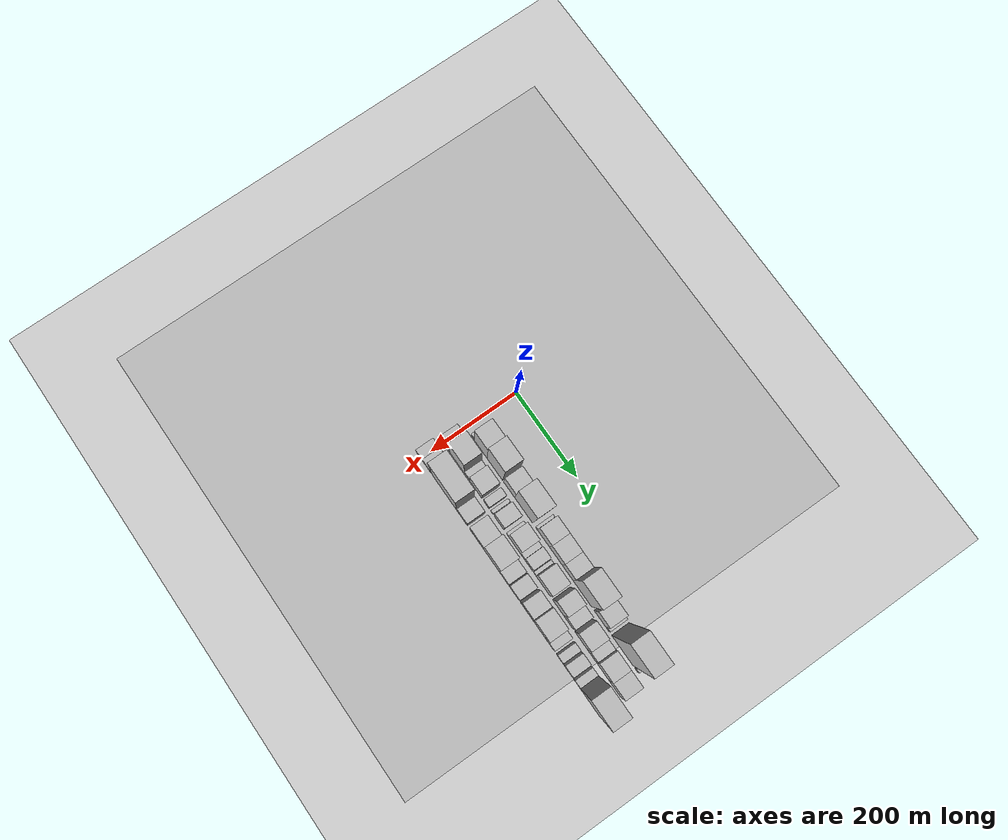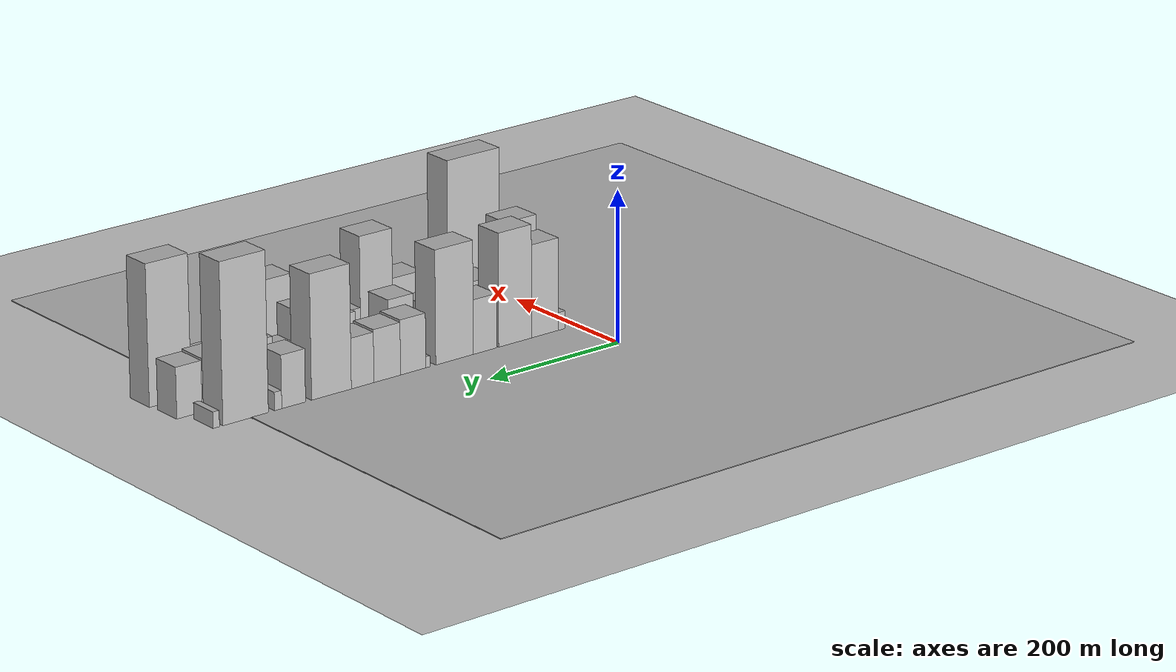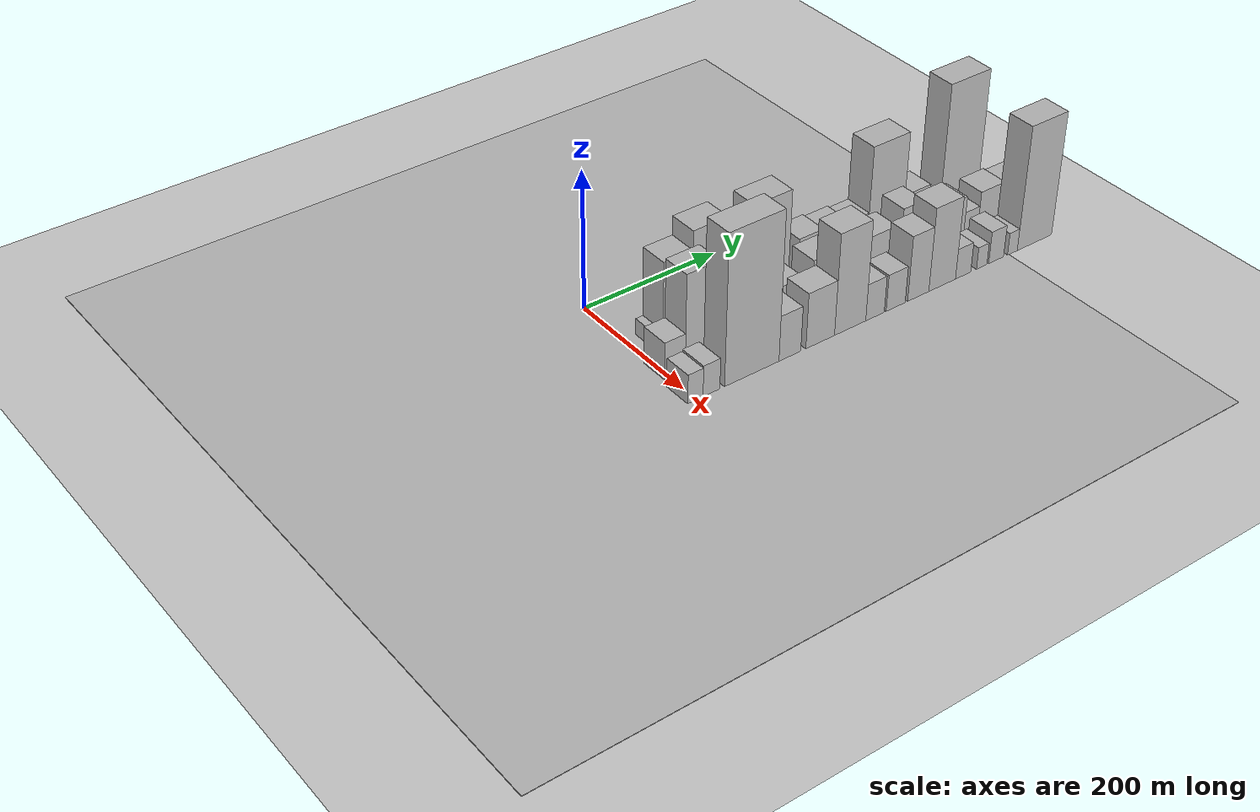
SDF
<sdf version="1.6">
 <world name="default">
  <include><name>ground_plane_1</name><uri>model://HANNAS_ground_plane</uri></include>
  <include>
   <name>ground_plane_2</name>
   <uri>model://HANNAS_ground_plane</uri>
   <pose>100 0 0  0 0 0</pose>
  </include>
  <model name="building_18">
   <static>1</static>
   <pose>100.0000 24.2222 0 0.000000 0.000000 0.000000</pose>
   <link name="link">
    <pose>0 0 12.00 0 0 0</pose>
    <collision name="collision"><geometry><box><size>40.0000 10.8533 24.0000</size></box></geometry></collision>
    <visual name="visual">
     <cast_shadows>0</cast_shadows>
     <geometry><box><size>40.0000 10.8533 24.0000</size></box></geometry>
     <material>
      <script>
       <uri>model://HANNAS_wall/materials/scripts</uri>
       <uri>model://HANNAS_wall/materials/textures</uri>
       <name>vrc/HANNAS_wall</name>
      </script>
     </material>
    </visual>
   </link>
  </model>
  <model name="building_19">
   <static>1</static>
   <pose>100.0000 51.1228 0 0.000000 0.000000 0.000000</pose>
   <link name="link">
    <pose>0 0 61.50 0 0 0</pose>
    <collision name="collision"><geometry><box><size>40.0000 42.9478 123.0000</size></box></geometry></collision>
    <visual name="visual">
     <cast_shadows>0</cast_shadows>
     <geometry><box><size>40.0000 42.9478 123.0000</size></box></geometry>
     <material>
      <script>
       <uri>model://HANNAS_wall/materials/scripts</uri>
       <uri>model://HANNAS_wall/materials/textures</uri>
       <name>vrc/HANNAS_wall</name>
      </script>
     </material>
    </visual>
   </link>
  </model>
  <model name="building_20">
   <static>1</static>
   <pose>100.0000 98.5554 0 0.000000 0.000000 0.000000</pose>
   <link name="link">
    <pose>0 0 75.00 0 0 0</pose>
    <collision name="collision"><geometry><box><size>40.0000 51.9175 150.0000</size></box></geometry></collision>
    <visual name="visual">
     <cast_shadows>0</cast_shadows>
     <geometry><box><size>40.0000 51.9175 150.0000</size></box></geometry>
     <material>
      <script>
       <uri>model://HANNAS_wall/materials/scripts</uri>
       <uri>model://HANNAS_wall/materials/textures</uri>
       <name>vrc/HANNAS_wall</name>
      </script>
     </material>
    </visual>
   </link>
  </model>
  <model name="building_21">
   <static>1</static>
   <pose>100.0000 145.8838 0 0.000000 0.000000 0.000000</pose>
   <link name="link">
    <pose>0 0 36.00 0 0 0</pose>
    <collision name="collision"><geometry><box><size>40.0000 36.7392 72.0000</size></box></geometry></collision>
    <visual name="visual">
     <cast_shadows>0</cast_shadows>
     <geometry><box><size>40.0000 36.7392 72.0000</size></box></geometry>
     <material>
      <script>
       <uri>model://HANNAS_wall/materials/scripts</uri>
       <uri>model://HANNAS_wall/materials/textures</uri>
       <name>vrc/HANNAS_wall</name>
      </script>
     </material>
    </visual>
   </link>
  </model>
  <model name="building_22">
   <static>1</static>
   <pose>100.0000 193.4489 0 0.000000 0.000000 0.000000</pose>
   <link name="link">
    <pose>0 0 75.00 0 0 0</pose>
    <collision name="collision"><geometry><box><size>40.0000 58.3910 150.0000</size></box></geometry></collision>
    <visual name="visual">
     <cast_shadows>0</cast_shadows>
     <geometry><box><size>40.0000 58.3910 150.0000</size></box></geometry>
     <material>
      <script>
       <uri>model://HANNAS_wall/materials/scripts</uri>
       <uri>model://HANNAS_wall/materials/textures</uri>
       <name>vrc/HANNAS_wall</name>
      </script>
     </material>
    </visual>
   </link>
  </model>
  <model name="building_23">
   <static>1</static>
   <pose>100.0000 234.8274 0 0.000000 0.000000 0.000000</pose>
   <link name="link">
    <pose>0 0 7.50 0 0 0</pose>
    <collision name="collision"><geometry><box><size>40.0000 6.3659 15.0000</size></box></geometry></collision>
    <visual name="visual">
     <cast_shadows>0</cast_shadows>
     <geometry><box><size>40.0000 6.3659 15.0000</size></box></geometry>
     <material>
      <script>
       <uri>model://HANNAS_wall/materials/scripts</uri>
       <uri>model://HANNAS_wall/materials/textures</uri>
       <name>vrc/HANNAS_wall</name>
      </script>
     </material>
    </visual>
   </link>
  </model>
  <model name="building_24">
   <static>1</static>
   <pose>100.0000 257.4116 0 0.000000 0.000000 0.000000</pose>
   <link name="link">
    <pose>0 0 36.00 0 0 0</pose>
    <collision name="collision"><geometry><box><size>40.0000 38.8025 72.0000</size></box></geometry></collision>
    <visual name="visual">
     <cast_shadows>0</cast_shadows>
     <geometry><box><size>40.0000 38.8025 72.0000</size></box></geometry>
     <material>
      <script>
       <uri>model://HANNAS_wall/materials/scripts</uri>
       <uri>model://HANNAS_wall/materials/textures</uri>
       <name>vrc/HANNAS_wall</name>
      </script>
     </material>
    </visual>
   </link>
  </model>
  <model name="building_25">
   <static>1</static>
   <pose>100.0000 297.0847 0 0.000000 0.000000 0.000000</pose>
   <link name="link">
    <pose>0 0 34.50 0 0 0</pose>
    <collision name="collision"><geometry><box><size>40.0000 40.5437 69.0000</size></box></geometry></collision>
    <visual name="visual">
     <cast_shadows>0</cast_shadows>
     <geometry><box><size>40.0000 40.5437 69.0000</size></box></geometry>
     <material>
      <script>
       <uri>model://HANNAS_wall/materials/scripts</uri>
       <uri>model://HANNAS_wall/materials/textures</uri>
       <name>vrc/HANNAS_wall</name>
      </script>
     </material>
    </visual>
   </link>
  </model>
  <model name="building_26">
   <static>1</static>
   <pose>100.0000 334.4643 0 0.000000 0.000000 0.000000</pose>
   <link name="link">
    <pose>0 0 33.00 0 0 0</pose>
    <collision name="collision"><geometry><box><size>40.0000 34.2156 66.0000</size></box></geometry></collision>
    <visual name="visual">
     <cast_shadows>0</cast_shadows>
     <geometry><box><size>40.0000 34.2156 66.0000</size></box></geometry>
     <material>
      <script>
       <uri>model://HANNAS_wall/materials/scripts</uri>
       <uri>model://HANNAS_wall/materials/textures</uri>
       <name>vrc/HANNAS_wall</name>
      </script>
     </material>
    </visual>
   </link>
  </model>
  <model name="building_27">
   <static>1</static>
   <pose>100.0000 381.3881 0 0.000000 0.000000 0.000000</pose>
   <link name="link">
    <pose>0 0 81.00 0 0 0</pose>
    <collision name="collision"><geometry><box><size>40.0000 59.6318 162.0000</size></box></geometry></collision>
    <visual name="visual">
     <cast_shadows>0</cast_shadows>
     <geometry><box><size>40.0000 59.6318 162.0000</size></box></geometry>
     <material>
      <script>
       <uri>model://HANNAS_wall/materials/scripts</uri>
       <uri>model://HANNAS_wall/materials/textures</uri>
       <name>vrc/HANNAS_wall</name>
      </script>
     </material>
    </visual>
   </link>
  </model>
  <model name="building_28">
   <static>1</static>
   <pose>100.0000 437.8209 0 0.000000 0.000000 0.000000</pose>
   <link name="link">
    <pose>0 0 34.50 0 0 0</pose>
    <collision name="collision"><geometry><box><size>40.0000 35.2339 69.0000</size></box></geometry></collision>
    <visual name="visual">
     <cast_shadows>0</cast_shadows>
     <geometry><box><size>40.0000 35.2339 69.0000</size></box></geometry>
     <material>
      <script>
       <uri>model://HANNAS_wall/materials/scripts</uri>
       <uri>model://HANNAS_wall/materials/textures</uri>
       <name>vrc/HANNAS_wall</name>
      </script>
     </material>
    </visual>
   </link>
  </model>
  <model name="building_29">
   <static>1</static>
   <pose>100.0000 460.8552 0 0.000000 0.000000 0.000000</pose>
   <link name="link">
    <pose>0 0 12.00 0 0 0</pose>
    <collision name="collision"><geometry><box><size>40.0000 10.8346 24.0000</size></box></geometry></collision>
    <visual name="visual">
     <cast_shadows>0</cast_shadows>
     <geometry><box><size>40.0000 10.8346 24.0000</size></box></geometry>
     <material>
      <script>
       <uri>model://HANNAS_wall/materials/scripts</uri>
       <uri>model://HANNAS_wall/materials/textures</uri>
       <name>vrc/HANNAS_wall</name>
      </script>
     </material>
    </visual>
   </link>
  </model>
  <model name="building_30">
   <static>1</static>
   <pose>100.0000 508.5867 0 0.000000 0.000000 0.000000</pose>
   <link name="link">
    <pose>0 0 103.50 0 0 0</pose>
    <collision name="collision"><geometry><box><size>40.0000 66.6283 207.0000</size></box></geometry></collision>
    <visual name="visual">
     <cast_shadows>0</cast_shadows>
     <geometry><box><size>40.0000 66.6283 207.0000</size></box></geometry>
     <material>
      <script>
       <uri>model://HANNAS_wall/materials/scripts</uri>
       <uri>model://HANNAS_wall/materials/textures</uri>
       <name>vrc/HANNAS_wall</name>
      </script>
     </material>
    </visual>
   </link>
  </model>
  <model name="building_31">
   <static>1</static>
   <pose>100.0000 551.4494 0 0.000000 0.000000 0.000000</pose>
   <link name="link">
    <pose>0 0 10.50 0 0 0</pose>
    <collision name="collision"><geometry><box><size>40.0000 9.0972 21.0000</size></box></geometry></collision>
    <visual name="visual">
     <cast_shadows>0</cast_shadows>
     <geometry><box><size>40.0000 9.0972 21.0000</size></box></geometry>
     <material>
      <script>
       <uri>model://HANNAS_wall/materials/scripts</uri>
       <uri>model://HANNAS_wall/materials/textures</uri>
       <name>vrc/HANNAS_wall</name>
      </script>
     </material>
    </visual>
   </link>
  </model>
  <model name="building_51">
   <static>1</static>
   <pose>152.0000 7.7453 0 0.000000 0.000000 0.000000</pose>
   <link name="link">
    <pose>0 0 27.00 0 0 0</pose>
    <collision name="collision"><geometry><box><size>40.0000 30.4874 54.0000</size></box></geometry></collision>
    <visual name="visual">
     <cast_shadows>0</cast_shadows>
     <geometry><box><size>40.0000 30.4874 54.0000</size></box></geometry>
     <material>
      <script>
       <uri>model://HANNAS_wall/materials/scripts</uri>
       <uri>model://HANNAS_wall/materials/textures</uri>
       <name>vrc/HANNAS_wall</name>
      </script>
     </material>
    </visual>
   </link>
  </model>
  <model name="building_52">
   <static>1</static>
   <pose>152.0000 47.5356 0 0.000000 0.000000 0.000000</pose>
   <link name="link">
    <pose>0 0 69.00 0 0 0</pose>
    <collision name="collision"><geometry><box><size>40.0000 49.0932 138.0000</size></box></geometry></collision>
    <visual name="visual">
     <cast_shadows>0</cast_shadows>
     <geometry><box><size>40.0000 49.0932 138.0000</size></box></geometry>
     <material>
      <script>
       <uri>model://HANNAS_wall/materials/scripts</uri>
       <uri>model://HANNAS_wall/materials/textures</uri>
       <name>vrc/HANNAS_wall</name>
      </script>
     </material>
    </visual>
   </link>
  </model>
  <model name="building_53">
   <static>1</static>
   <pose>152.0000 80.6233 0 0.000000 0.000000 0.000000</pose>
   <link name="link">
    <pose>0 0 15.00 0 0 0</pose>
    <collision name="collision"><geometry><box><size>40.0000 17.0822 30.0000</size></box></geometry></collision>
    <visual name="visual">
     <cast_shadows>0</cast_shadows>
     <geometry><box><size>40.0000 17.0822 30.0000</size></box></geometry>
     <material>
      <script>
       <uri>model://HANNAS_wall/materials/scripts</uri>
       <uri>model://HANNAS_wall/materials/textures</uri>
       <name>vrc/HANNAS_wall</name>
      </script>
     </material>
    </visual>
   </link>
  </model>
  <model name="building_54">
   <static>1</static>
   <pose>152.0000 109.5064 0 0.000000 0.000000 0.000000</pose>
   <link name="link">
    <pose>0 0 36.00 0 0 0</pose>
    <collision name="collision"><geometry><box><size>40.0000 40.6840 72.0000</size></box></geometry></collision>
    <visual name="visual">
     <cast_shadows>0</cast_shadows>
     <geometry><box><size>40.0000 40.6840 72.0000</size></box></geometry>
     <material>
      <script>
       <uri>model://HANNAS_wall/materials/scripts</uri>
       <uri>model://HANNAS_wall/materials/textures</uri>
       <name>vrc/HANNAS_wall</name>
      </script>
     </material>
    </visual>
   </link>
  </model>
  <model name="building_55">
   <static>1</static>
   <pose>152.0000 144.2552 0 0.000000 0.000000 0.000000</pose>
   <link name="link">
    <pose>0 0 16.50 0 0 0</pose>
    <collision name="collision"><geometry><box><size>40.0000 18.8135 33.0000</size></box></geometry></collision>
    <visual name="visual">
     <cast_shadows>0</cast_shadows>
     <geometry><box><size>40.0000 18.8135 33.0000</size></box></geometry>
     <material>
      <script>
       <uri>model://HANNAS_wall/materials/scripts</uri>
       <uri>model://HANNAS_wall/materials/textures</uri>
       <name>vrc/HANNAS_wall</name>
      </script>
     </material>
    </visual>
   </link>
  </model>
  <model name="building_56">
   <static>1</static>
   <pose>152.0000 162.7093 0 0.000000 0.000000 0.000000</pose>
   <link name="link">
    <pose>0 0 9.00 0 0 0</pose>
    <collision name="collision"><geometry><box><size>40.0000 8.0948 18.0000</size></box></geometry></collision>
    <visual name="visual">
     <cast_shadows>0</cast_shadows>
     <geometry><box><size>40.0000 8.0948 18.0000</size></box></geometry>
     <material>
      <script>
       <uri>model://HANNAS_wall/materials/scripts</uri>
       <uri>model://HANNAS_wall/materials/textures</uri>
       <name>vrc/HANNAS_wall</name>
      </script>
     </material>
    </visual>
   </link>
  </model>
  <model name="building_57">
   <static>1</static>
   <pose>152.0000 185.8116 0 0.000000 0.000000 0.000000</pose>
   <link name="link">
    <pose>0 0 30.00 0 0 0</pose>
    <collision name="collision"><geometry><box><size>40.0000 32.1097 60.0000</size></box></geometry></collision>
    <visual name="visual">
     <cast_shadows>0</cast_shadows>
     <geometry><box><size>40.0000 32.1097 60.0000</size></box></geometry>
     <material>
      <script>
       <uri>model://HANNAS_wall/materials/scripts</uri>
       <uri>model://HANNAS_wall/materials/textures</uri>
       <name>vrc/HANNAS_wall</name>
      </script>
     </material>
    </visual>
   </link>
  </model>
  <model name="building_58">
   <static>1</static>
   <pose>152.0000 213.2073 0 0.000000 0.000000 0.000000</pose>
   <link name="link">
    <pose>0 0 7.50 0 0 0</pose>
    <collision name="collision"><geometry><box><size>40.0000 6.6817 15.0000</size></box></geometry></collision>
    <visual name="visual">
     <cast_shadows>0</cast_shadows>
     <geometry><box><size>40.0000 6.6817 15.0000</size></box></geometry>
     <material>
      <script>
       <uri>model://HANNAS_wall/materials/scripts</uri>
       <uri>model://HANNAS_wall/materials/textures</uri>
       <name>vrc/HANNAS_wall</name>
      </script>
     </material>
    </visual>
   </link>
  </model>
  <model name="building_59">
   <static>1</static>
   <pose>152.0000 236.0588 0 0.000000 0.000000 0.000000</pose>
   <link name="link">
    <pose>0 0 39.00 0 0 0</pose>
    <collision name="collision"><geometry><box><size>40.0000 39.0213 78.0000</size></box></geometry></collision>
    <visual name="visual">
     <cast_shadows>0</cast_shadows>
     <geometry><box><size>40.0000 39.0213 78.0000</size></box></geometry>
     <material>
      <script>
       <uri>model://HANNAS_wall/materials/scripts</uri>
       <uri>model://HANNAS_wall/materials/textures</uri>
       <name>vrc/HANNAS_wall</name>
      </script>
     </material>
    </visual>
   </link>
  </model>
  <model name="building_60">
   <static>1</static>
   <pose>152.0000 262.2768 0 0.000000 0.000000 0.000000</pose>
   <link name="link">
    <pose>0 0 13.50 0 0 0</pose>
    <collision name="collision"><geometry><box><size>40.0000 13.4148 27.0000</size></box></geometry></collision>
    <visual name="visual">
     <cast_shadows>0</cast_shadows>
     <geometry><box><size>40.0000 13.4148 27.0000</size></box></geometry>
     <material>
      <script>
       <uri>model://HANNAS_wall/materials/scripts</uri>
       <uri>model://HANNAS_wall/materials/textures</uri>
       <name>vrc/HANNAS_wall</name>
      </script>
     </material>
    </visual>
   </link>
  </model>
  <model name="building_61">
   <static>1</static>
   <pose>152.0000 281.8961 0 0.000000 0.000000 0.000000</pose>
   <link name="link">
    <pose>0 0 22.50 0 0 0</pose>
    <collision name="collision"><geometry><box><size>40.0000 25.8237 45.0000</size></box></geometry></collision>
    <visual name="visual">
     <cast_shadows>0</cast_shadows>
     <geometry><box><size>40.0000 25.8237 45.0000</size></box></geometry>
     <material>
      <script>
       <uri>model://HANNAS_wall/materials/scripts</uri>
       <uri>model://HANNAS_wall/materials/textures</uri>
       <name>vrc/HANNAS_wall</name>
      </script>
     </material>
    </visual>
   </link>
  </model>
  <model name="building_62">
   <static>1</static>
   <pose>152.0000 301.7665 0 0.000000 0.000000 0.000000</pose>
   <link name="link">
    <pose>0 0 9.00 0 0 0</pose>
    <collision name="collision"><geometry><box><size>40.0000 7.9170 18.0000</size></box></geometry></collision>
    <visual name="visual">
     <cast_shadows>0</cast_shadows>
     <geometry><box><size>40.0000 7.9170 18.0000</size></box></geometry>
     <material>
      <script>
       <uri>model://HANNAS_wall/materials/scripts</uri>
       <uri>model://HANNAS_wall/materials/textures</uri>
       <name>vrc/HANNAS_wall</name>
      </script>
     </material>
    </visual>
   </link>
  </model>
  <model name="building_63">
   <static>1</static>
   <pose>152.0000 328.2118 0 0.000000 0.000000 0.000000</pose>
   <link name="link">
    <pose>0 0 37.50 0 0 0</pose>
    <collision name="collision"><geometry><box><size>40.0000 44.9737 75.0000</size></box></geometry></collision>
    <visual name="visual">
     <cast_shadows>0</cast_shadows>
     <geometry><box><size>40.0000 44.9737 75.0000</size></box></geometry>
     <material>
      <script>
       <uri>model://HANNAS_wall/materials/scripts</uri>
       <uri>model://HANNAS_wall/materials/textures</uri>
       <name>vrc/HANNAS_wall</name>
      </script>
     </material>
    </visual>
   </link>
  </model>
  <model name="building_64">
   <static>1</static>
   <pose>152.0000 376.8503 0 0.000000 0.000000 0.000000</pose>
   <link name="link">
    <pose>0 0 48.00 0 0 0</pose>
    <collision name="collision"><geometry><box><size>40.0000 34.3032 96.0000</size></box></geometry></collision>
    <visual name="visual">
     <cast_shadows>0</cast_shadows>
     <geometry><box><size>40.0000 34.3032 96.0000</size></box></geometry>
     <material>
      <script>
       <uri>model://HANNAS_wall/materials/scripts</uri>
       <uri>model://HANNAS_wall/materials/textures</uri>
       <name>vrc/HANNAS_wall</name>
      </script>
     </material>
    </visual>
   </link>
  </model>
  <model name="building_65">
   <static>1</static>
   <pose>152.0000 409.0550 0 0.000000 0.000000 0.000000</pose>
   <link name="link">
    <pose>0 0 27.00 0 0 0</pose>
    <collision name="collision"><geometry><box><size>40.0000 30.1064 54.0000</size></box></geometry></collision>
    <visual name="visual">
     <cast_shadows>0</cast_shadows>
     <geometry><box><size>40.0000 30.1064 54.0000</size></box></geometry>
     <material>
      <script>
       <uri>model://HANNAS_wall/materials/scripts</uri>
       <uri>model://HANNAS_wall/materials/textures</uri>
       <name>vrc/HANNAS_wall</name>
      </script>
     </material>
    </visual>
   </link>
  </model>
  <model name="building_66">
   <static>1</static>
   <pose>152.0000 449.6153 0 0.000000 0.000000 0.000000</pose>
   <link name="link">
    <pose>0 0 36.00 0 0 0</pose>
    <collision name="collision"><geometry><box><size>40.0000 39.0142 72.0000</size></box></geometry></collision>
    <visual name="visual">
     <cast_shadows>0</cast_shadows>
     <geometry><box><size>40.0000 39.0142 72.0000</size></box></geometry>
     <material>
      <script>
       <uri>model://HANNAS_wall/materials/scripts</uri>
       <uri>model://HANNAS_wall/materials/textures</uri>
       <name>vrc/HANNAS_wall</name>
      </script>
     </material>
    </visual>
   </link>
  </model>
  <model name="building_67">
   <static>1</static>
   <pose>152.0000 481.4933 0 0.000000 0.000000 0.000000</pose>
   <link name="link">
    <pose>0 0 24.00 0 0 0</pose>
    <collision name="collision"><geometry><box><size>40.0000 24.7418 48.0000</size></box></geometry></collision>
    <visual name="visual">
     <cast_shadows>0</cast_shadows>
     <geometry><box><size>40.0000 24.7418 48.0000</size></box></geometry>
     <material>
      <script>
       <uri>model://HANNAS_wall/materials/scripts</uri>
       <uri>model://HANNAS_wall/materials/textures</uri>
       <name>vrc/HANNAS_wall</name>
      </script>
     </material>
    </visual>
   </link>
  </model>
  <model name="building_68">
   <static>1</static>
   <pose>152.0000 514.5308 0 0.000000 0.000000 0.000000</pose>
   <link name="link">
    <pose>0 0 34.50 0 0 0</pose>
    <collision name="collision"><geometry><box><size>40.0000 41.3331 69.0000</size></box></geometry></collision>
    <visual name="visual">
     <cast_shadows>0</cast_shadows>
     <geometry><box><size>40.0000 41.3331 69.0000</size></box></geometry>
     <material>
      <script>
       <uri>model://HANNAS_wall/materials/scripts</uri>
       <uri>model://HANNAS_wall/materials/textures</uri>
       <name>vrc/HANNAS_wall</name>
      </script>
     </material>
    </visual>
   </link>
  </model>
  <model name="building_69">
   <static>1</static>
   <pose>152.0000 553.7053 0 0.000000 0.000000 0.000000</pose>
   <link name="link">
    <pose>0 0 33.00 0 0 0</pose>
    <collision name="collision"><geometry><box><size>40.0000 37.0159 66.0000</size></box></geometry></collision>
    <visual name="visual">
     <cast_shadows>0</cast_shadows>
     <geometry><box><size>40.0000 37.0159 66.0000</size></box></geometry>
     <material>
      <script>
       <uri>model://HANNAS_wall/materials/scripts</uri>
       <uri>model://HANNAS_wall/materials/textures</uri>
       <name>vrc/HANNAS_wall</name>
      </script>
     </material>
    </visual>
   </link>
  </model>
  <model name="building_82">
   <static>1</static>
   <pose>204.0000 -2.2089 0 0.000000 0.000000 0.000000</pose>
   <link name="link">
    <pose>0 0 21.00 0 0 0</pose>
    <collision name="collision"><geometry><box><size>40.0000 22.3751 42.0000</size></box></geometry></collision>
    <visual name="visual">
     <cast_shadows>0</cast_shadows>
     <geometry><box><size>40.0000 22.3751 42.0000</size></box></geometry>
     <material>
      <script>
       <uri>model://HANNAS_wall/materials/scripts</uri>
       <uri>model://HANNAS_wall/materials/textures</uri>
       <name>vrc/HANNAS_wall</name>
      </script>
     </material>
    </visual>
   </link>
  </model>
  <model name="building_83">
   <static>1</static>
   <pose>204.0000 21.3745 0 0.000000 0.000000 0.000000</pose>
   <link name="link">
    <pose>0 0 22.50 0 0 0</pose>
    <collision name="collision"><geometry><box><size>40.0000 24.7918 45.0000</size></box></geometry></collision>
    <visual name="visual">
     <cast_shadows>0</cast_shadows>
     <geometry><box><size>40.0000 24.7918 45.0000</size></box></geometry>
     <material>
      <script>
       <uri>model://HANNAS_wall/materials/scripts</uri>
       <uri>model://HANNAS_wall/materials/textures</uri>
       <name>vrc/HANNAS_wall</name>
      </script>
     </material>
    </visual>
   </link>
  </model>
  <model name="building_84">
   <static>1</static>
   <pose>204.0000 81.8294 0 0.000000 0.000000 0.000000</pose>
   <link name="link">
    <pose>0 0 108.00 0 0 0</pose>
    <collision name="collision"><geometry><box><size>40.0000 82.1179 216.0000</size></box></geometry></collision>
    <visual name="visual">
     <cast_shadows>0</cast_shadows>
     <geometry><box><size>40.0000 82.1179 216.0000</size></box></geometry>
     <material>
      <script>
       <uri>model://HANNAS_wall/materials/scripts</uri>
       <uri>model://HANNAS_wall/materials/textures</uri>
       <name>vrc/HANNAS_wall</name>
      </script>
     </material>
    </visual>
   </link>
  </model>
  <model name="building_85">
   <static>1</static>
   <pose>204.0000 139.6782 0 0.000000 0.000000 0.000000</pose>
   <link name="link">
    <pose>0 0 33.00 0 0 0</pose>
    <collision name="collision"><geometry><box><size>40.0000 33.5797 66.0000</size></box></geometry></collision>
    <visual name="visual">
     <cast_shadows>0</cast_shadows>
     <geometry><box><size>40.0000 33.5797 66.0000</size></box></geometry>
     <material>
      <script>
       <uri>model://HANNAS_wall/materials/scripts</uri>
       <uri>model://HANNAS_wall/materials/textures</uri>
       <name>vrc/HANNAS_wall</name>
      </script>
     </material>
    </visual>
   </link>
  </model>
  <model name="building_86">
   <static>1</static>
   <pose>204.0000 186.9586 0 0.000000 0.000000 0.000000</pose>
   <link name="link">
    <pose>0 0 40.50 0 0 0</pose>
    <collision name="collision"><geometry><box><size>40.0000 44.9811 81.0000</size></box></geometry></collision>
    <visual name="visual">
     <cast_shadows>0</cast_shadows>
     <geometry><box><size>40.0000 44.9811 81.0000</size></box></geometry>
     <material>
      <script>
       <uri>model://HANNAS_wall/materials/scripts</uri>
       <uri>model://HANNAS_wall/materials/textures</uri>
       <name>vrc/HANNAS_wall</name>
      </script>
     </material>
    </visual>
   </link>
  </model>
  <model name="building_87">
   <static>1</static>
   <pose>204.0000 234.3616 0 0.000000 0.000000 0.000000</pose>
   <link name="link">
    <pose>0 0 73.50 0 0 0</pose>
    <collision name="collision"><geometry><box><size>40.0000 49.8248 147.0000</size></box></geometry></collision>
    <visual name="visual">
     <cast_shadows>0</cast_shadows>
     <geometry><box><size>40.0000 49.8248 147.0000</size></box></geometry>
     <material>
      <script>
       <uri>model://HANNAS_wall/materials/scripts</uri>
       <uri>model://HANNAS_wall/materials/textures</uri>
       <name>vrc/HANNAS_wall</name>
      </script>
     </material>
    </visual>
   </link>
  </model>
  <model name="building_88">
   <static>1</static>
   <pose>204.0000 274.3141 0 0.000000 0.000000 0.000000</pose>
   <link name="link">
    <pose>0 0 27.00 0 0 0</pose>
    <collision name="collision"><geometry><box><size>40.0000 30.0803 54.0000</size></box></geometry></collision>
    <visual name="visual">
     <cast_shadows>0</cast_shadows>
     <geometry><box><size>40.0000 30.0803 54.0000</size></box></geometry>
     <material>
      <script>
       <uri>model://HANNAS_wall/materials/scripts</uri>
       <uri>model://HANNAS_wall/materials/textures</uri>
       <name>vrc/HANNAS_wall</name>
      </script>
     </material>
    </visual>
   </link>
  </model>
  <model name="building_89">
   <static>1</static>
   <pose>204.0000 308.0053 0 0.000000 0.000000 0.000000</pose>
   <link name="link">
    <pose>0 0 27.00 0 0 0</pose>
    <collision name="collision"><geometry><box><size>40.0000 31.3021 54.0000</size></box></geometry></collision>
    <visual name="visual">
     <cast_shadows>0</cast_shadows>
     <geometry><box><size>40.0000 31.3021 54.0000</size></box></geometry>
     <material>
      <script>
       <uri>model://HANNAS_wall/materials/scripts</uri>
       <uri>model://HANNAS_wall/materials/textures</uri>
       <name>vrc/HANNAS_wall</name>
      </script>
     </material>
    </visual>
   </link>
  </model>
  <model name="building_90">
   <static>1</static>
   <pose>204.0000 345.2312 0 0.000000 0.000000 0.000000</pose>
   <link name="link">
    <pose>0 0 48.00 0 0 0</pose>
    <collision name="collision"><geometry><box><size>40.0000 35.1497 96.0000</size></box></geometry></collision>
    <visual name="visual">
     <cast_shadows>0</cast_shadows>
     <geometry><box><size>40.0000 35.1497 96.0000</size></box></geometry>
     <material>
      <script>
       <uri>model://HANNAS_wall/materials/scripts</uri>
       <uri>model://HANNAS_wall/materials/textures</uri>
       <name>vrc/HANNAS_wall</name>
      </script>
     </material>
    </visual>
   </link>
  </model>
  <model name="building_91">
   <static>1</static>
   <pose>204.0000 385.2869 0 0.000000 0.000000 0.000000</pose>
   <link name="link">
    <pose>0 0 61.50 0 0 0</pose>
    <collision name="collision"><geometry><box><size>40.0000 44.9616 123.0000</size></box></geometry></collision>
    <visual name="visual">
     <cast_shadows>0</cast_shadows>
     <geometry><box><size>40.0000 44.9616 123.0000</size></box></geometry>
     <material>
      <script>
       <uri>model://HANNAS_wall/materials/scripts</uri>
       <uri>model://HANNAS_wall/materials/textures</uri>
       <name>vrc/HANNAS_wall</name>
      </script>
     </material>
    </visual>
   </link>
  </model>
  <model name="building_92">
   <static>1</static>
   <pose>204.0000 420.7586 0 0.000000 0.000000 0.000000</pose>
   <link name="link">
    <pose>0 0 22.50 0 0 0</pose>
    <collision name="collision"><geometry><box><size>40.0000 25.9819 45.0000</size></box></geometry></collision>
    <visual name="visual">
     <cast_shadows>0</cast_shadows>
     <geometry><box><size>40.0000 25.9819 45.0000</size></box></geometry>
     <material>
      <script>
       <uri>model://HANNAS_wall/materials/scripts</uri>
       <uri>model://HANNAS_wall/materials/textures</uri>
       <name>vrc/HANNAS_wall</name>
      </script>
     </material>
    </visual>
   </link>
  </model>
  <model name="building_93">
   <static>1</static>
   <pose>204.0000 452.7648 0 0.000000 0.000000 0.000000</pose>
   <link name="link">
    <pose>0 0 16.50 0 0 0</pose>
    <collision name="collision"><geometry><box><size>40.0000 18.0305 33.0000</size></box></geometry></collision>
    <visual name="visual">
     <cast_shadows>0</cast_shadows>
     <geometry><box><size>40.0000 18.0305 33.0000</size></box></geometry>
     <material>
      <script>
       <uri>model://HANNAS_wall/materials/scripts</uri>
       <uri>model://HANNAS_wall/materials/textures</uri>
       <name>vrc/HANNAS_wall</name>
      </script>
     </material>
    </visual>
   </link>
  </model>
  <model name="building_94">
   <static>1</static>
   <pose>204.0000 477.7023 0 0.000000 0.000000 0.000000</pose>
   <link name="link">
    <pose>0 0 24.00 0 0 0</pose>
    <collision name="collision"><geometry><box><size>40.0000 25.8446 48.0000</size></box></geometry></collision>
    <visual name="visual">
     <cast_shadows>0</cast_shadows>
     <geometry><box><size>40.0000 25.8446 48.0000</size></box></geometry>
     <material>
      <script>
       <uri>model://HANNAS_wall/materials/scripts</uri>
       <uri>model://HANNAS_wall/materials/textures</uri>
       <name>vrc/HANNAS_wall</name>
      </script>
     </material>
    </visual>
   </link>
  </model>
  <model name="building_95">
   <static>1</static>
   <pose>204.0000 506.1950 0 0.000000 0.000000 0.000000</pose>
   <link name="link">
    <pose>0 0 16.50 0 0 0</pose>
    <collision name="collision"><geometry><box><size>40.0000 17.1407 33.0000</size></box></geometry></collision>
    <visual name="visual">
     <cast_shadows>0</cast_shadows>
     <geometry><box><size>40.0000 17.1407 33.0000</size></box></geometry>
     <material>
      <script>
       <uri>model://HANNAS_wall/materials/scripts</uri>
       <uri>model://HANNAS_wall/materials/textures</uri>
       <name>vrc/HANNAS_wall</name>
      </script>
     </material>
    </visual>
   </link>
  </model>
  <model name="building_96">
   <static>1</static>
   <pose>204.0000 545.3538 0 0.000000 0.000000 0.000000</pose>
   <link name="link">
    <pose>0 0 91.50 0 0 0</pose>
    <collision name="collision"><geometry><box><size>40.0000 61.1769 183.0000</size></box></geometry></collision>
    <visual name="visual">
     <cast_shadows>0</cast_shadows>
     <geometry><box><size>40.0000 61.1769 183.0000</size></box></geometry>
     <material>
      <script>
       <uri>model://HANNAS_wall/materials/scripts</uri>
       <uri>model://HANNAS_wall/materials/textures</uri>
       <name>vrc/HANNAS_wall</name>
      </script>
     </material>
    </visual>
   </link>
  </model>
 </world>
</sdf>
